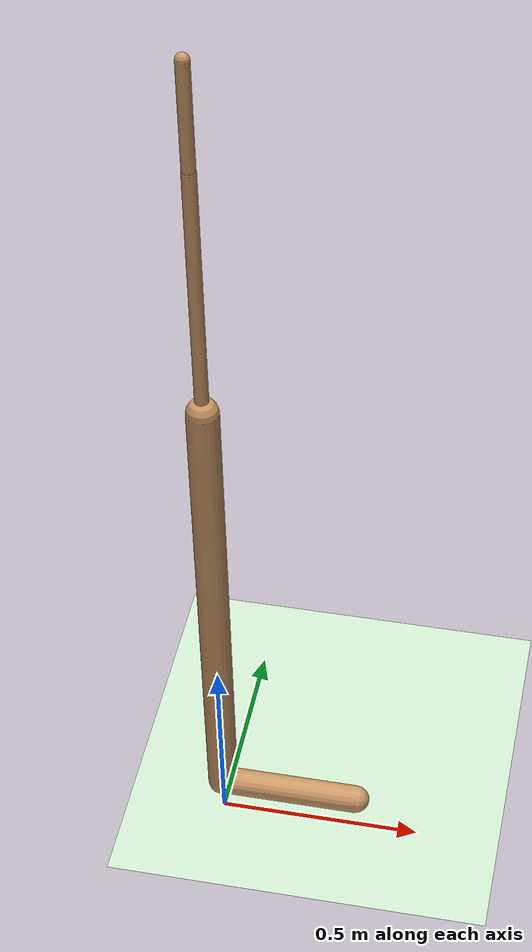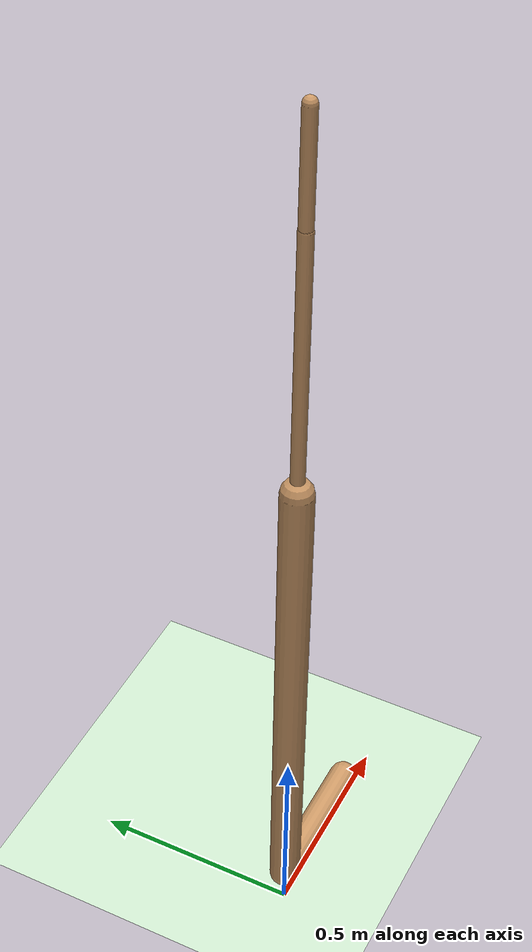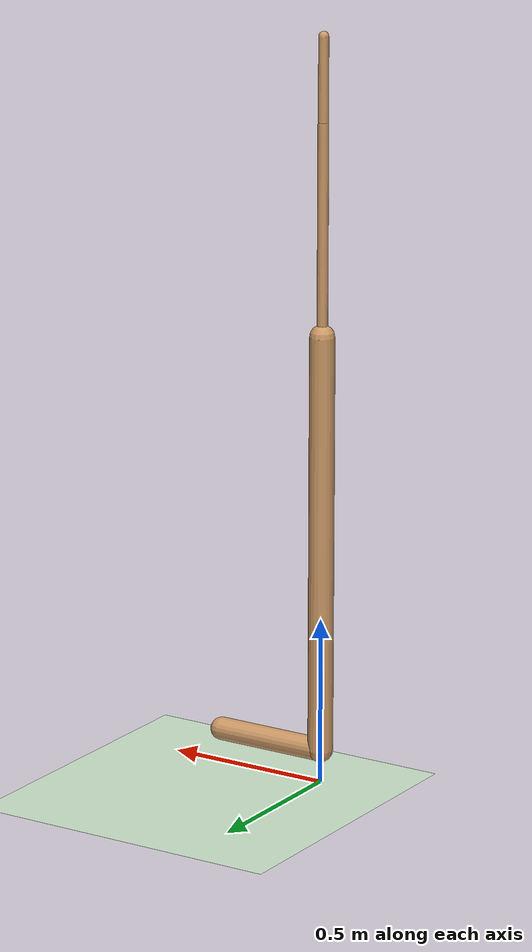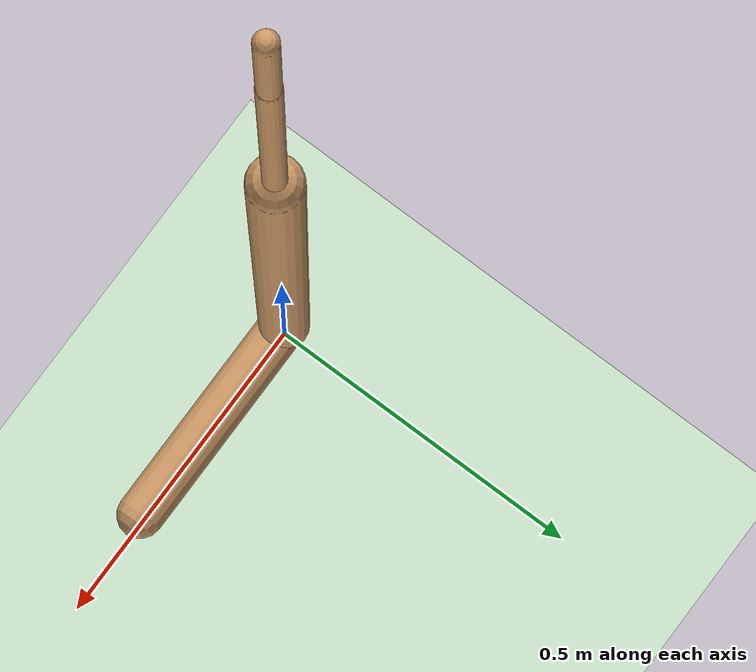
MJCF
<mujoco model="walker2d">
  <compiler angle="degree" inertiafromgeom="true" />
  <default>
    <joint armature="0.01" damping=".1" limited="true" />
    <geom conaffinity="0" condim="3" contype="1" density="1000" friction=".7 .1 .1" rgba="0.8 0.6 .4 1" />
  </default>
  <option integrator="RK4" timestep="0.002" />
  <worldbody>
    <light cutoff="100" diffuse="1 1 1" dir="-0 0 -1.3" directional="true" exponent="1" pos="0 0 1.3" specular=".1 .1 .1" />
    <geom conaffinity="1" condim="3" name="floor" pos="0 0 0" rgba="0.8 0.9 0.8 1" size="40 40 40" type="plane" material="MatPlane" />
    <body name="torso" pos="0 0 2.090098908543587">
      <camera name="track" mode="trackcom" pos="0 -5 -1.25" xyaxes="1 0 0 0 0 1" />
      <joint armature="0" axis="1 0 0" damping="0" limited="false" name="rootx" pos="0 0 -1.25" stiffness="0" type="slide" />
      <joint armature="0" axis="0 0 1" damping="0" limited="false" name="rootz" pos="0 0 -1.25" ref="1.25" stiffness="0" type="slide" />
      <joint armature="0" axis="0 1 0" damping="0" limited="false" name="rooty" pos="0 0 0" stiffness="0" type="hinge" />
      <geom friction="0.9" name="torso_geom" size="0.01493249461054802 0.1250820904970169" type="capsule" />
      <body name="thigh" pos="0 0 -0.1250820904970169">
        <joint axis="0 -1 0" name="thigh_joint" pos="0 0 0" range="-150 0" type="hinge" />
        <site name="torso_thigh_site" pos="0 0 0" size="0.01" type="sphere" rgba="1 0 0 0.5" />
        <geom friction="0.9" pos="0 0 -0.3093724250793457" name="thigh_geom" size="0.015808667987585068 0.3093724250793457" type="capsule" />
        <body name="leg" pos="0 0 -1.2418808341026306">
          <joint axis="0 -1 0" name="leg_joint" pos="0 0 0.6231359839439392" range="-150 0" type="hinge" />
          <site name="thigh_leg_site" pos="0 0 0.25" size="0.01" type="sphere" rgba="1 0 0 0.5" />
          <geom friction="0.9" name="leg_geom" size="0.037130821496248245 0.6231359839439392" type="capsule" />
          <body name="foot" pos="0.34203702211380005 0 -0.7231359839439392">
            <joint axis="0 -1 0" name="foot_joint" pos="-0.34203702211380005 0 0.1" range="-45 45" type="hinge" />
            <site name="leg_foot_site" pos="-0.2 0 0.1" size="0.01" type="sphere" rgba="1 0 0 0.5" />
            <geom friction="0.9" pos="-0.17101851105690002 0 0.1" quat="0.70710678118654757 0 -0.70710678118654746 0" name="foot_geom" size="0.03430737182497978 0.17101851105690002" type="capsule" />
          </body>
        </body>
      </body>

      <body name="thigh_left" pos="0 0 -0.1250820904970169">
        <joint axis="0 -1 0" name="thigh_left_joint" pos="0 0 0" range="-150 0" type="hinge" />
        <site name="torso_thigh_left_site" pos="0 0 0" size="0.01" type="sphere" rgba="1 0 0 0.5" />
        <geom friction="0.9" name="thigh_left_geom" rgba=".7 .3 .6 1" size="0.015808667987585068 0.3093724250793457" pos="0 0 -0.3093724250793457" type="capsule" />
        <body name="leg_left" pos="0 0 -1.2418808341026306">
          <joint axis="0 -1 0" name="leg_left_joint" pos="0 0 0.6231359839439392" range="-150 0" type="hinge" />
          <site name="thigh_leg_left_site" pos="0 0 0.25" size="0.01" type="sphere" rgba="1 0 0 0.5" />
          <geom friction="0.9" name="leg_left_geom" rgba=".7 .3 .6 1" size="0.037130821496248245 0.6231359839439392" type="capsule" />
          <body name="foot_left" pos="0.34203702211380005 0 -0.7231359839439392">
            <joint axis="0 -1 0" name="foot_left_joint" pos="-0.34203702211380005 0 0.1" range="-45 45" type="hinge" />
            <site name="leg_foot_left_site" pos="-0.2 0 0.1" size="0.01" type="sphere" rgba="1 0 0 0.5" />
            <geom friction="1.9" name="foot_left_geom" rgba=".7 .3 .6 1" size="0.03430737182497978 0.17101851105690002" pos="-0.17101851105690002 0 0.1" type="capsule" quat="0.70710678118654757 0 -0.70710678118654746 0" />
          </body>
        </body>
      </body>
    </body>
  </worldbody>
  <actuator>

    <motor ctrllimited="true" ctrlrange="-1.0 1.0" gear="13.74515469325057" joint="thigh_joint" />
    <motor ctrllimited="true" ctrlrange="-1.0 1.0" gear="214.77906889626377" joint="leg_joint" />
    <motor ctrllimited="true" ctrlrange="-1.0 1.0" gear="55.913350738447534" joint="foot_joint" />
    <motor ctrllimited="true" ctrlrange="-1.0 1.0" gear="13.74515469325057" joint="thigh_left_joint" />
    <motor ctrllimited="true" ctrlrange="-1.0 1.0" gear="214.77906889626377" joint="leg_left_joint" />
    <motor ctrllimited="true" ctrlrange="-1.0 1.0" gear="55.913350738447534" joint="foot_left_joint" />

  </actuator>
    <asset>
        <texture type="skybox" builtin="gradient" rgb1=".4 .5 .6" rgb2="0 0 0" width="100" height="100" />
        <texture builtin="flat" height="1278" mark="cross" markrgb="1 1 1" name="texgeom" random="0.01" rgb1="0.8 0.6 0.4" rgb2="0.8 0.6 0.4" type="cube" width="127" />
        <texture builtin="checker" height="100" name="texplane" rgb1="0 0 0" rgb2="0.8 0.8 0.8" type="2d" width="100" />
        <material name="MatPlane" reflectance="0.5" shininess="1" specular="1" texrepeat="60 60" texture="texplane" />
        <material name="geom" texture="texgeom" texuniform="true" />
    </asset>

  <sensor>
    <force site="torso_thigh_site" name="torso_thigh_sensor" />
    <force site="thigh_leg_site" name="thigh_leg_sensor" />
    <force site="leg_foot_site" name="leg_foot_sensor" />
    <force site="torso_thigh_left_site" name="torso_thigh_left_sensor" />
    <force site="thigh_leg_left_site" name="thigh_leg_left_sensor" />
    <force site="leg_foot_left_site" name="leg_foot_left_sensor" />
  </sensor>
</mujoco>
